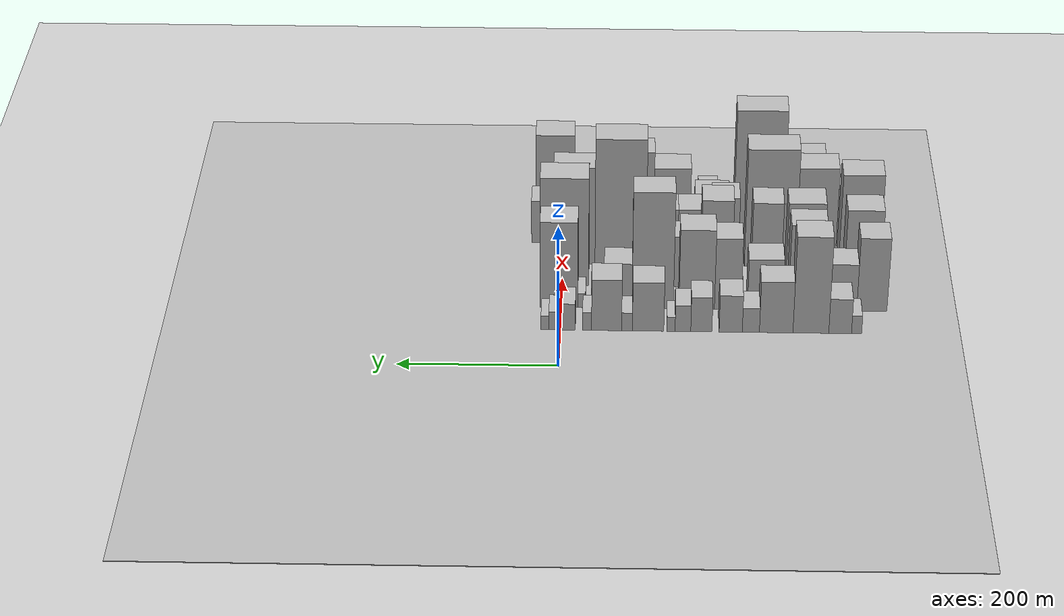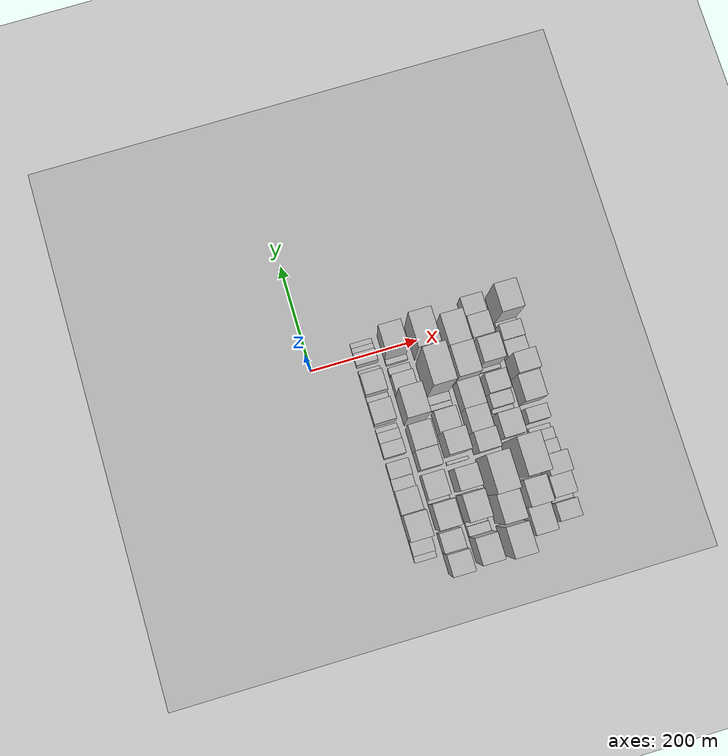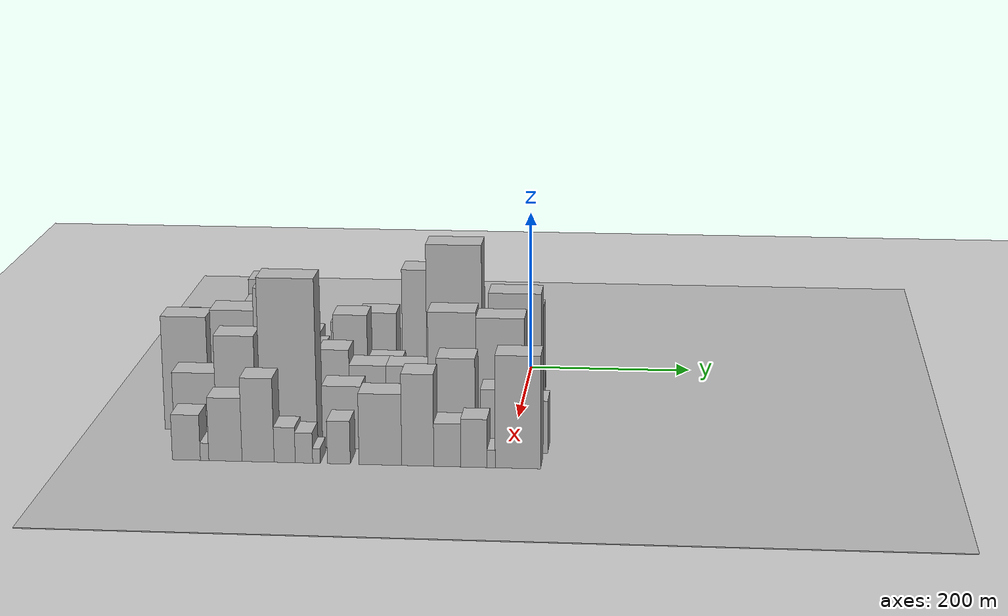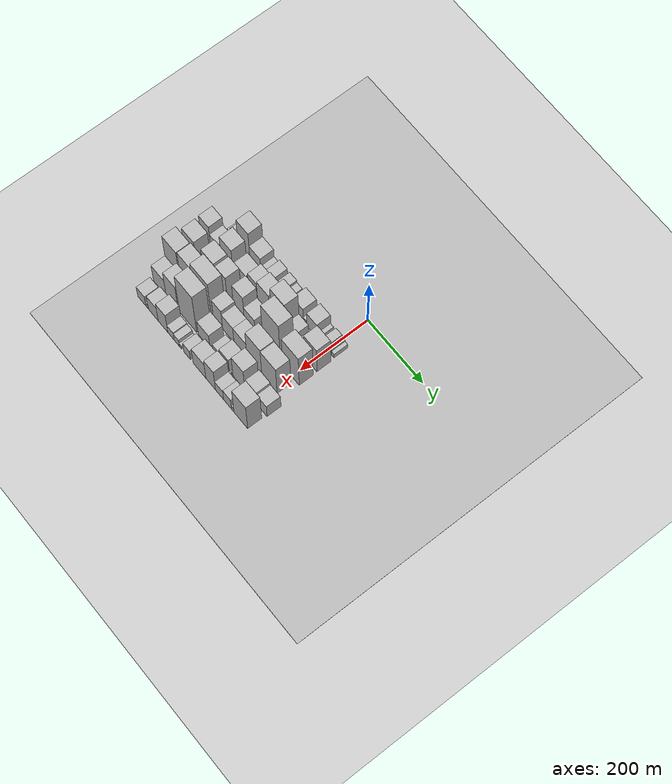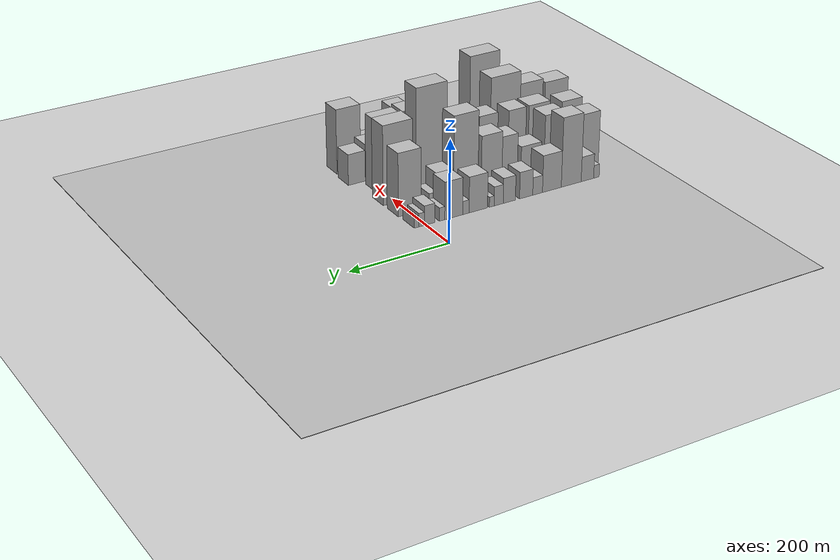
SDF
<sdf version="1.6">
 <world name="default">
  <include><name>ground_plane_1</name><uri>model://HANNAS_ground_plane</uri></include>
  <include>
   <name>ground_plane_2</name>
   <uri>model://HANNAS_ground_plane</uri>
   <pose>100 0 0  0 0 0</pose>
  </include>
  <model name="building_13">
   <static>1</static>
   <pose>100.0000 -370.3168 0 0.000000 0.000000 0.000000</pose>
   <link name="link">
    <pose>0 0 13.50 0 0 0</pose>
    <collision name="collision"><geometry><box><size>40.0000 12.6946 27.0000</size></box></geometry></collision>
    <visual name="visual">
     <cast_shadows>0</cast_shadows>
     <geometry><box><size>40.0000 12.6946 27.0000</size></box></geometry>
     <material>
      <script>
       <uri>model://HANNAS_wall/materials/scripts</uri>
       <uri>model://HANNAS_wall/materials/textures</uri>
       <name>vrc/HANNAS_wall</name>
      </script>
     </material>
    </visual>
   </link>
  </model>
  <model name="building_14">
   <static>1</static>
   <pose>100.0000 -349.7692 0 0.000000 0.000000 0.000000</pose>
   <link name="link">
    <pose>0 0 25.50 0 0 0</pose>
    <collision name="collision"><geometry><box><size>40.0000 28.4006 51.0000</size></box></geometry></collision>
    <visual name="visual">
     <cast_shadows>0</cast_shadows>
     <geometry><box><size>40.0000 28.4006 51.0000</size></box></geometry>
     <material>
      <script>
       <uri>model://HANNAS_wall/materials/scripts</uri>
       <uri>model://HANNAS_wall/materials/textures</uri>
       <name>vrc/HANNAS_wall</name>
      </script>
     </material>
    </visual>
   </link>
  </model>
  <model name="building_15">
   <static>1</static>
   <pose>100.0000 -313.1992 0 0.000000 0.000000 0.000000</pose>
   <link name="link">
    <pose>0 0 70.50 0 0 0</pose>
    <collision name="collision"><geometry><box><size>40.0000 44.7393 141.0000</size></box></geometry></collision>
    <visual name="visual">
     <cast_shadows>0</cast_shadows>
     <geometry><box><size>40.0000 44.7393 141.0000</size></box></geometry>
     <material>
      <script>
       <uri>model://HANNAS_wall/materials/scripts</uri>
       <uri>model://HANNAS_wall/materials/textures</uri>
       <name>vrc/HANNAS_wall</name>
      </script>
     </material>
    </visual>
   </link>
  </model>
  <model name="building_16">
   <static>1</static>
   <pose>100.0000 -269.9063 0 0.000000 0.000000 0.000000</pose>
   <link name="link">
    <pose>0 0 37.50 0 0 0</pose>
    <collision name="collision"><geometry><box><size>40.0000 41.8466 75.0000</size></box></geometry></collision>
    <visual name="visual">
     <cast_shadows>0</cast_shadows>
     <geometry><box><size>40.0000 41.8466 75.0000</size></box></geometry>
     <material>
      <script>
       <uri>model://HANNAS_wall/materials/scripts</uri>
       <uri>model://HANNAS_wall/materials/textures</uri>
       <name>vrc/HANNAS_wall</name>
      </script>
     </material>
    </visual>
   </link>
  </model>
  <model name="building_17">
   <static>1</static>
   <pose>100.0000 -238.2697 0 0.000000 0.000000 0.000000</pose>
   <link name="link">
    <pose>0 0 18.00 0 0 0</pose>
    <collision name="collision"><geometry><box><size>40.0000 21.4265 36.0000</size></box></geometry></collision>
    <visual name="visual">
     <cast_shadows>0</cast_shadows>
     <geometry><box><size>40.0000 21.4265 36.0000</size></box></geometry>
     <material>
      <script>
       <uri>model://HANNAS_wall/materials/scripts</uri>
       <uri>model://HANNAS_wall/materials/textures</uri>
       <name>vrc/HANNAS_wall</name>
      </script>
     </material>
    </visual>
   </link>
  </model>
  <model name="building_18">
   <static>1</static>
   <pose>100.0000 -213.0907 0 0.000000 0.000000 0.000000</pose>
   <link name="link">
    <pose>0 0 27.00 0 0 0</pose>
    <collision name="collision"><geometry><box><size>40.0000 28.9316 54.0000</size></box></geometry></collision>
    <visual name="visual">
     <cast_shadows>0</cast_shadows>
     <geometry><box><size>40.0000 28.9316 54.0000</size></box></geometry>
     <material>
      <script>
       <uri>model://HANNAS_wall/materials/scripts</uri>
       <uri>model://HANNAS_wall/materials/textures</uri>
       <name>vrc/HANNAS_wall</name>
      </script>
     </material>
    </visual>
   </link>
  </model>
  <model name="building_19">
   <static>1</static>
   <pose>100.0000 -176.3862 0 0.000000 0.000000 0.000000</pose>
   <link name="link">
    <pose>0 0 25.50 0 0 0</pose>
    <collision name="collision"><geometry><box><size>40.0000 26.4775 51.0000</size></box></geometry></collision>
    <visual name="visual">
     <cast_shadows>0</cast_shadows>
     <geometry><box><size>40.0000 26.4775 51.0000</size></box></geometry>
     <material>
      <script>
       <uri>model://HANNAS_wall/materials/scripts</uri>
       <uri>model://HANNAS_wall/materials/textures</uri>
       <name>vrc/HANNAS_wall</name>
      </script>
     </material>
    </visual>
   </link>
  </model>
  <model name="building_20">
   <static>1</static>
   <pose>100.0000 -153.3326 0 0.000000 0.000000 0.000000</pose>
   <link name="link">
    <pose>0 0 19.50 0 0 0</pose>
    <collision name="collision"><geometry><box><size>40.0000 19.6296 39.0000</size></box></geometry></collision>
    <visual name="visual">
     <cast_shadows>0</cast_shadows>
     <geometry><box><size>40.0000 19.6296 39.0000</size></box></geometry>
     <material>
      <script>
       <uri>model://HANNAS_wall/materials/scripts</uri>
       <uri>model://HANNAS_wall/materials/textures</uri>
       <name>vrc/HANNAS_wall</name>
      </script>
     </material>
    </visual>
   </link>
  </model>
  <model name="building_21">
   <static>1</static>
   <pose>100.0000 -138.4469 0 0.000000 0.000000 0.000000</pose>
   <link name="link">
    <pose>0 0 10.50 0 0 0</pose>
    <collision name="collision"><geometry><box><size>40.0000 10.1417 21.0000</size></box></geometry></collision>
    <visual name="visual">
     <cast_shadows>0</cast_shadows>
     <geometry><box><size>40.0000 10.1417 21.0000</size></box></geometry>
     <material>
      <script>
       <uri>model://HANNAS_wall/materials/scripts</uri>
       <uri>model://HANNAS_wall/materials/textures</uri>
       <name>vrc/HANNAS_wall</name>
      </script>
     </material>
    </visual>
   </link>
  </model>
  <model name="building_22">
   <static>1</static>
   <pose>100.0000 -109.7502 0 0.000000 0.000000 0.000000</pose>
   <link name="link">
    <pose>0 0 36.00 0 0 0</pose>
    <collision name="collision"><geometry><box><size>40.0000 39.2516 72.0000</size></box></geometry></collision>
    <visual name="visual">
     <cast_shadows>0</cast_shadows>
     <geometry><box><size>40.0000 39.2516 72.0000</size></box></geometry>
     <material>
      <script>
       <uri>model://HANNAS_wall/materials/scripts</uri>
       <uri>model://HANNAS_wall/materials/textures</uri>
       <name>vrc/HANNAS_wall</name>
      </script>
     </material>
    </visual>
   </link>
  </model>
  <model name="building_23">
   <static>1</static>
   <pose>100.0000 -83.3877 0 0.000000 0.000000 0.000000</pose>
   <link name="link">
    <pose>0 0 13.50 0 0 0</pose>
    <collision name="collision"><geometry><box><size>40.0000 13.4734 27.0000</size></box></geometry></collision>
    <visual name="visual">
     <cast_shadows>0</cast_shadows>
     <geometry><box><size>40.0000 13.4734 27.0000</size></box></geometry>
     <material>
      <script>
       <uri>model://HANNAS_wall/materials/scripts</uri>
       <uri>model://HANNAS_wall/materials/textures</uri>
       <name>vrc/HANNAS_wall</name>
      </script>
     </material>
    </visual>
   </link>
  </model>
  <model name="building_24">
   <static>1</static>
   <pose>100.0000 -57.8024 0 0.000000 0.000000 0.000000</pose>
   <link name="link">
    <pose>0 0 37.50 0 0 0</pose>
    <collision name="collision"><geometry><box><size>40.0000 37.6972 75.0000</size></box></geometry></collision>
    <visual name="visual">
     <cast_shadows>0</cast_shadows>
     <geometry><box><size>40.0000 37.6972 75.0000</size></box></geometry>
     <material>
      <script>
       <uri>model://HANNAS_wall/materials/scripts</uri>
       <uri>model://HANNAS_wall/materials/textures</uri>
       <name>vrc/HANNAS_wall</name>
      </script>
     </material>
    </visual>
   </link>
  </model>
  <model name="building_25">
   <static>1</static>
   <pose>100.0000 -33.2798 0 0.000000 0.000000 0.000000</pose>
   <link name="link">
    <pose>0 0 13.50 0 0 0</pose>
    <collision name="collision"><geometry><box><size>40.0000 11.3481 27.0000</size></box></geometry></collision>
    <visual name="visual">
     <cast_shadows>0</cast_shadows>
     <geometry><box><size>40.0000 11.3481 27.0000</size></box></geometry>
     <material>
      <script>
       <uri>model://HANNAS_wall/materials/scripts</uri>
       <uri>model://HANNAS_wall/materials/textures</uri>
       <name>vrc/HANNAS_wall</name>
      </script>
     </material>
    </visual>
   </link>
  </model>
  <model name="building_26">
   <static>1</static>
   <pose>100.0000 -7.4630 0 0.000000 0.000000 0.000000</pose>
   <link name="link">
    <pose>0 0 19.50 0 0 0</pose>
    <collision name="collision"><geometry><box><size>40.0000 22.2854 39.0000</size></box></geometry></collision>
    <visual name="visual">
     <cast_shadows>0</cast_shadows>
     <geometry><box><size>40.0000 22.2854 39.0000</size></box></geometry>
     <material>
      <script>
       <uri>model://HANNAS_wall/materials/scripts</uri>
       <uri>model://HANNAS_wall/materials/textures</uri>
       <name>vrc/HANNAS_wall</name>
      </script>
     </material>
    </visual>
   </link>
  </model>
  <model name="building_27">
   <static>1</static>
   <pose>100.0000 9.1200 0 0.000000 0.000000 0.000000</pose>
   <link name="link">
    <pose>0 0 13.50 0 0 0</pose>
    <collision name="collision"><geometry><box><size>40.0000 10.8806 27.0000</size></box></geometry></collision>
    <visual name="visual">
     <cast_shadows>0</cast_shadows>
     <geometry><box><size>40.0000 10.8806 27.0000</size></box></geometry>
     <material>
      <script>
       <uri>model://HANNAS_wall/materials/scripts</uri>
       <uri>model://HANNAS_wall/materials/textures</uri>
       <name>vrc/HANNAS_wall</name>
      </script>
     </material>
    </visual>
   </link>
  </model>
  <model name="building_28">
   <static>1</static>
   <pose>100.0000 19.4953 0 0.000000 0.000000 0.000000</pose>
   <link name="link">
    <pose>0 0 10.50 0 0 0</pose>
    <collision name="collision"><geometry><box><size>40.0000 9.8701 21.0000</size></box></geometry></collision>
    <visual name="visual">
     <cast_shadows>0</cast_shadows>
     <geometry><box><size>40.0000 9.8701 21.0000</size></box></geometry>
     <material>
      <script>
       <uri>model://HANNAS_wall/materials/scripts</uri>
       <uri>model://HANNAS_wall/materials/textures</uri>
       <name>vrc/HANNAS_wall</name>
      </script>
     </material>
    </visual>
   </link>
  </model>
  <model name="building_65">
   <static>1</static>
   <pose>152.0000 -392.7315 0 0.000000 0.000000 0.000000</pose>
   <link name="link">
    <pose>0 0 54.00 0 0 0</pose>
    <collision name="collision"><geometry><box><size>40.0000 38.1709 108.0000</size></box></geometry></collision>
    <visual name="visual">
     <cast_shadows>0</cast_shadows>
     <geometry><box><size>40.0000 38.1709 108.0000</size></box></geometry>
     <material>
      <script>
       <uri>model://HANNAS_wall/materials/scripts</uri>
       <uri>model://HANNAS_wall/materials/textures</uri>
       <name>vrc/HANNAS_wall</name>
      </script>
     </material>
    </visual>
   </link>
  </model>
  <model name="building_66">
   <static>1</static>
   <pose>152.0000 -355.9440 0 0.000000 0.000000 0.000000</pose>
   <link name="link">
    <pose>0 0 34.50 0 0 0</pose>
    <collision name="collision"><geometry><box><size>40.0000 35.4041 69.0000</size></box></geometry></collision>
    <visual name="visual">
     <cast_shadows>0</cast_shadows>
     <geometry><box><size>40.0000 35.4041 69.0000</size></box></geometry>
     <material>
      <script>
       <uri>model://HANNAS_wall/materials/scripts</uri>
       <uri>model://HANNAS_wall/materials/textures</uri>
       <name>vrc/HANNAS_wall</name>
      </script>
     </material>
    </visual>
   </link>
  </model>
  <model name="building_67">
   <static>1</static>
   <pose>152.0000 -309.5828 0 0.000000 0.000000 0.000000</pose>
   <link name="link">
    <pose>0 0 63.00 0 0 0</pose>
    <collision name="collision"><geometry><box><size>40.0000 45.3184 126.0000</size></box></geometry></collision>
    <visual name="visual">
     <cast_shadows>0</cast_shadows>
     <geometry><box><size>40.0000 45.3184 126.0000</size></box></geometry>
     <material>
      <script>
       <uri>model://HANNAS_wall/materials/scripts</uri>
       <uri>model://HANNAS_wall/materials/textures</uri>
       <name>vrc/HANNAS_wall</name>
      </script>
     </material>
    </visual>
   </link>
  </model>
  <model name="building_68">
   <static>1</static>
   <pose>152.0000 -283.4989 0 0.000000 0.000000 0.000000</pose>
   <link name="link">
    <pose>0 0 7.50 0 0 0</pose>
    <collision name="collision"><geometry><box><size>40.0000 6.8493 15.0000</size></box></geometry></collision>
    <visual name="visual">
     <cast_shadows>0</cast_shadows>
     <geometry><box><size>40.0000 6.8493 15.0000</size></box></geometry>
     <material>
      <script>
       <uri>model://HANNAS_wall/materials/scripts</uri>
       <uri>model://HANNAS_wall/materials/textures</uri>
       <name>vrc/HANNAS_wall</name>
      </script>
     </material>
    </visual>
   </link>
  </model>
  <model name="building_69">
   <static>1</static>
   <pose>152.0000 -257.7718 0 0.000000 0.000000 0.000000</pose>
   <link name="link">
    <pose>0 0 37.50 0 0 0</pose>
    <collision name="collision"><geometry><box><size>40.0000 44.6049 75.0000</size></box></geometry></collision>
    <visual name="visual">
     <cast_shadows>0</cast_shadows>
     <geometry><box><size>40.0000 44.6049 75.0000</size></box></geometry>
     <material>
      <script>
       <uri>model://HANNAS_wall/materials/scripts</uri>
       <uri>model://HANNAS_wall/materials/textures</uri>
       <name>vrc/HANNAS_wall</name>
      </script>
     </material>
    </visual>
   </link>
  </model>
  <model name="building_70">
   <static>1</static>
   <pose>152.0000 -210.6001 0 0.000000 0.000000 0.000000</pose>
   <link name="link">
    <pose>0 0 52.50 0 0 0</pose>
    <collision name="collision"><geometry><box><size>40.0000 33.7383 105.0000</size></box></geometry></collision>
    <visual name="visual">
     <cast_shadows>0</cast_shadows>
     <geometry><box><size>40.0000 33.7383 105.0000</size></box></geometry>
     <material>
      <script>
       <uri>model://HANNAS_wall/materials/scripts</uri>
       <uri>model://HANNAS_wall/materials/textures</uri>
       <name>vrc/HANNAS_wall</name>
      </script>
     </material>
    </visual>
   </link>
  </model>
  <model name="building_71">
   <static>1</static>
   <pose>152.0000 -171.2642 0 0.000000 0.000000 0.000000</pose>
   <link name="link">
    <pose>0 0 58.50 0 0 0</pose>
    <collision name="collision"><geometry><box><size>40.0000 44.9336 117.0000</size></box></geometry></collision>
    <visual name="visual">
     <cast_shadows>0</cast_shadows>
     <geometry><box><size>40.0000 44.9336 117.0000</size></box></geometry>
     <material>
      <script>
       <uri>model://HANNAS_wall/materials/scripts</uri>
       <uri>model://HANNAS_wall/materials/textures</uri>
       <name>vrc/HANNAS_wall</name>
      </script>
     </material>
    </visual>
   </link>
  </model>
  <model name="building_72">
   <static>1</static>
   <pose>152.0000 -115.6282 0 0.000000 0.000000 0.000000</pose>
   <link name="link">
    <pose>0 0 85.50 0 0 0</pose>
    <collision name="collision"><geometry><box><size>40.0000 52.3383 171.0000</size></box></geometry></collision>
    <visual name="visual">
     <cast_shadows>0</cast_shadows>
     <geometry><box><size>40.0000 52.3383 171.0000</size></box></geometry>
     <material>
      <script>
       <uri>model://HANNAS_wall/materials/scripts</uri>
       <uri>model://HANNAS_wall/materials/textures</uri>
       <name>vrc/HANNAS_wall</name>
      </script>
     </material>
    </visual>
   </link>
  </model>
  <model name="building_73">
   <static>1</static>
   <pose>152.0000 -71.7036 0 0.000000 0.000000 0.000000</pose>
   <link name="link">
    <pose>0 0 33.00 0 0 0</pose>
    <collision name="collision"><geometry><box><size>40.0000 35.5109 66.0000</size></box></geometry></collision>
    <visual name="visual">
     <cast_shadows>0</cast_shadows>
     <geometry><box><size>40.0000 35.5109 66.0000</size></box></geometry>
     <material>
      <script>
       <uri>model://HANNAS_wall/materials/scripts</uri>
       <uri>model://HANNAS_wall/materials/textures</uri>
       <name>vrc/HANNAS_wall</name>
      </script>
     </material>
    </visual>
   </link>
  </model>
  <model name="building_74">
   <static>1</static>
   <pose>152.0000 -45.7500 0 0.000000 0.000000 0.000000</pose>
   <link name="link">
    <pose>0 0 15.00 0 0 0</pose>
    <collision name="collision"><geometry><box><size>40.0000 16.3961 30.0000</size></box></geometry></collision>
    <visual name="visual">
     <cast_shadows>0</cast_shadows>
     <geometry><box><size>40.0000 16.3961 30.0000</size></box></geometry>
     <material>
      <script>
       <uri>model://HANNAS_wall/materials/scripts</uri>
       <uri>model://HANNAS_wall/materials/textures</uri>
       <name>vrc/HANNAS_wall</name>
      </script>
     </material>
    </visual>
   </link>
  </model>
  <model name="building_75">
   <static>1</static>
   <pose>152.0000 -25.6211 0 0.000000 0.000000 0.000000</pose>
   <link name="link">
    <pose>0 0 10.50 0 0 0</pose>
    <collision name="collision"><geometry><box><size>40.0000 9.8617 21.0000</size></box></geometry></collision>
    <visual name="visual">
     <cast_shadows>0</cast_shadows>
     <geometry><box><size>40.0000 9.8617 21.0000</size></box></geometry>
     <material>
      <script>
       <uri>model://HANNAS_wall/materials/scripts</uri>
       <uri>model://HANNAS_wall/materials/textures</uri>
       <name>vrc/HANNAS_wall</name>
      </script>
     </material>
    </visual>
   </link>
  </model>
  <model name="building_76">
   <static>1</static>
   <pose>152.0000 3.0299 0 0.000000 0.000000 0.000000</pose>
   <link name="link">
    <pose>0 0 63.00 0 0 0</pose>
    <collision name="collision"><geometry><box><size>40.0000 47.4403 126.0000</size></box></geometry></collision>
    <visual name="visual">
     <cast_shadows>0</cast_shadows>
     <geometry><box><size>40.0000 47.4403 126.0000</size></box></geometry>
     <material>
      <script>
       <uri>model://HANNAS_wall/materials/scripts</uri>
       <uri>model://HANNAS_wall/materials/textures</uri>
       <name>vrc/HANNAS_wall</name>
      </script>
     </material>
    </visual>
   </link>
  </model>
  <model name="building_112">
   <static>1</static>
   <pose>204.0000 -383.6074 0 0.000000 0.000000 0.000000</pose>
   <link name="link">
    <pose>0 0 58.50 0 0 0</pose>
    <collision name="collision"><geometry><box><size>40.0000 46.5537 117.0000</size></box></geometry></collision>
    <visual name="visual">
     <cast_shadows>0</cast_shadows>
     <geometry><box><size>40.0000 46.5537 117.0000</size></box></geometry>
     <material>
      <script>
       <uri>model://HANNAS_wall/materials/scripts</uri>
       <uri>model://HANNAS_wall/materials/textures</uri>
       <name>vrc/HANNAS_wall</name>
      </script>
     </material>
    </visual>
   </link>
  </model>
  <model name="building_113">
   <static>1</static>
   <pose>204.0000 -351.3864 0 0.000000 0.000000 0.000000</pose>
   <link name="link">
    <pose>0 0 15.00 0 0 0</pose>
    <collision name="collision"><geometry><box><size>40.0000 17.8884 30.0000</size></box></geometry></collision>
    <visual name="visual">
     <cast_shadows>0</cast_shadows>
     <geometry><box><size>40.0000 17.8884 30.0000</size></box></geometry>
     <material>
      <script>
       <uri>model://HANNAS_wall/materials/scripts</uri>
       <uri>model://HANNAS_wall/materials/textures</uri>
       <name>vrc/HANNAS_wall</name>
      </script>
     </material>
    </visual>
   </link>
  </model>
  <model name="building_114">
   <static>1</static>
   <pose>204.0000 -337.8575 0 0.000000 0.000000 0.000000</pose>
   <link name="link">
    <pose>0 0 10.50 0 0 0</pose>
    <collision name="collision"><geometry><box><size>40.0000 9.1694 21.0000</size></box></geometry></collision>
    <visual name="visual">
     <cast_shadows>0</cast_shadows>
     <geometry><box><size>40.0000 9.1694 21.0000</size></box></geometry>
     <material>
      <script>
       <uri>model://HANNAS_wall/materials/scripts</uri>
       <uri>model://HANNAS_wall/materials/textures</uri>
       <name>vrc/HANNAS_wall</name>
      </script>
     </material>
    </visual>
   </link>
  </model>
  <model name="building_115">
   <static>1</static>
   <pose>204.0000 -309.4667 0 0.000000 0.000000 0.000000</pose>
   <link name="link">
    <pose>0 0 63.00 0 0 0</pose>
    <collision name="collision"><geometry><box><size>40.0000 47.6123 126.0000</size></box></geometry></collision>
    <visual name="visual">
     <cast_shadows>0</cast_shadows>
     <geometry><box><size>40.0000 47.6123 126.0000</size></box></geometry>
     <material>
      <script>
       <uri>model://HANNAS_wall/materials/scripts</uri>
       <uri>model://HANNAS_wall/materials/textures</uri>
       <name>vrc/HANNAS_wall</name>
      </script>
     </material>
    </visual>
   </link>
  </model>
  <model name="building_116">
   <static>1</static>
   <pose>204.0000 -260.3054 0 0.000000 0.000000 0.000000</pose>
   <link name="link">
    <pose>0 0 63.00 0 0 0</pose>
    <collision name="collision"><geometry><box><size>40.0000 38.7102 126.0000</size></box></geometry></collision>
    <visual name="visual">
     <cast_shadows>0</cast_shadows>
     <geometry><box><size>40.0000 38.7102 126.0000</size></box></geometry>
     <material>
      <script>
       <uri>model://HANNAS_wall/materials/scripts</uri>
       <uri>model://HANNAS_wall/materials/textures</uri>
       <name>vrc/HANNAS_wall</name>
      </script>
     </material>
    </visual>
   </link>
  </model>
  <model name="building_117">
   <static>1</static>
   <pose>204.0000 -227.9271 0 0.000000 0.000000 0.000000</pose>
   <link name="link">
    <pose>0 0 7.50 0 0 0</pose>
    <collision name="collision"><geometry><box><size>40.0000 6.0463 15.0000</size></box></geometry></collision>
    <visual name="visual">
     <cast_shadows>0</cast_shadows>
     <geometry><box><size>40.0000 6.0463 15.0000</size></box></geometry>
     <material>
      <script>
       <uri>model://HANNAS_wall/materials/scripts</uri>
       <uri>model://HANNAS_wall/materials/textures</uri>
       <name>vrc/HANNAS_wall</name>
      </script>
     </material>
    </visual>
   </link>
  </model>
  <model name="building_118">
   <static>1</static>
   <pose>204.0000 -196.7830 0 0.000000 0.000000 0.000000</pose>
   <link name="link">
    <pose>0 0 64.50 0 0 0</pose>
    <collision name="collision"><geometry><box><size>40.0000 40.2419 129.0000</size></box></geometry></collision>
    <visual name="visual">
     <cast_shadows>0</cast_shadows>
     <geometry><box><size>40.0000 40.2419 129.0000</size></box></geometry>
     <material>
      <script>
       <uri>model://HANNAS_wall/materials/scripts</uri>
       <uri>model://HANNAS_wall/materials/textures</uri>
       <name>vrc/HANNAS_wall</name>
      </script>
     </material>
    </visual>
   </link>
  </model>
  <model name="building_119">
   <static>1</static>
   <pose>204.0000 -156.4671 0 0.000000 0.000000 0.000000</pose>
   <link name="link">
    <pose>0 0 37.50 0 0 0</pose>
    <collision name="collision"><geometry><box><size>40.0000 40.3898 75.0000</size></box></geometry></collision>
    <visual name="visual">
     <cast_shadows>0</cast_shadows>
     <geometry><box><size>40.0000 40.3898 75.0000</size></box></geometry>
     <material>
      <script>
       <uri>model://HANNAS_wall/materials/scripts</uri>
       <uri>model://HANNAS_wall/materials/textures</uri>
       <name>vrc/HANNAS_wall</name>
      </script>
     </material>
    </visual>
   </link>
  </model>
  <model name="building_120">
   <static>1</static>
   <pose>204.0000 -127.3492 0 0.000000 0.000000 0.000000</pose>
   <link name="link">
    <pose>0 0 12.00 0 0 0</pose>
    <collision name="collision"><geometry><box><size>40.0000 9.8461 24.0000</size></box></geometry></collision>
    <visual name="visual">
     <cast_shadows>0</cast_shadows>
     <geometry><box><size>40.0000 9.8461 24.0000</size></box></geometry>
     <material>
      <script>
       <uri>model://HANNAS_wall/materials/scripts</uri>
       <uri>model://HANNAS_wall/materials/textures</uri>
       <name>vrc/HANNAS_wall</name>
      </script>
     </material>
    </visual>
   </link>
  </model>
  <model name="building_121">
   <static>1</static>
   <pose>204.0000 -114.4963 0 0.000000 0.000000 0.000000</pose>
   <link name="link">
    <pose>0 0 15.00 0 0 0</pose>
    <collision name="collision"><geometry><box><size>40.0000 15.8597 30.0000</size></box></geometry></collision>
    <visual name="visual">
     <cast_shadows>0</cast_shadows>
     <geometry><box><size>40.0000 15.8597 30.0000</size></box></geometry>
     <material>
      <script>
       <uri>model://HANNAS_wall/materials/scripts</uri>
       <uri>model://HANNAS_wall/materials/textures</uri>
       <name>vrc/HANNAS_wall</name>
      </script>
     </material>
    </visual>
   </link>
  </model>
  <model name="building_122">
   <static>1</static>
   <pose>204.0000 -74.1068 0 0.000000 0.000000 0.000000</pose>
   <link name="link">
    <pose>0 0 108.00 0 0 0</pose>
    <collision name="collision"><geometry><box><size>40.0000 64.9193 216.0000</size></box></geometry></collision>
    <visual name="visual">
     <cast_shadows>0</cast_shadows>
     <geometry><box><size>40.0000 64.9193 216.0000</size></box></geometry>
     <material>
      <script>
       <uri>model://HANNAS_wall/materials/scripts</uri>
       <uri>model://HANNAS_wall/materials/textures</uri>
       <name>vrc/HANNAS_wall</name>
      </script>
     </material>
    </visual>
   </link>
  </model>
  <model name="building_123">
   <static>1</static>
   <pose>204.0000 -2.8531 0 0.000000 0.000000 0.000000</pose>
   <link name="link">
    <pose>0 0 79.50 0 0 0</pose>
    <collision name="collision"><geometry><box><size>40.0000 61.5880 159.0000</size></box></geometry></collision>
    <visual name="visual">
     <cast_shadows>0</cast_shadows>
     <geometry><box><size>40.0000 61.5880 159.0000</size></box></geometry>
     <material>
      <script>
       <uri>model://HANNAS_wall/materials/scripts</uri>
       <uri>model://HANNAS_wall/materials/textures</uri>
       <name>vrc/HANNAS_wall</name>
      </script>
     </material>
    </visual>
   </link>
  </model>
  <model name="building_162">
   <static>1</static>
   <pose>256.0000 -383.0794 0 0.000000 0.000000 0.000000</pose>
   <link name="link">
    <pose>0 0 69.00 0 0 0</pose>
    <collision name="collision"><geometry><box><size>40.0000 53.0187 138.0000</size></box></geometry></collision>
    <visual name="visual">
     <cast_shadows>0</cast_shadows>
     <geometry><box><size>40.0000 53.0187 138.0000</size></box></geometry>
     <material>
      <script>
       <uri>model://HANNAS_wall/materials/scripts</uri>
       <uri>model://HANNAS_wall/materials/textures</uri>
       <name>vrc/HANNAS_wall</name>
      </script>
     </material>
    </visual>
   </link>
  </model>
  <model name="building_163">
   <static>1</static>
   <pose>256.0000 -326.2078 0 0.000000 0.000000 0.000000</pose>
   <link name="link">
    <pose>0 0 73.50 0 0 0</pose>
    <collision name="collision"><geometry><box><size>40.0000 50.7244 147.0000</size></box></geometry></collision>
    <visual name="visual">
     <cast_shadows>0</cast_shadows>
     <geometry><box><size>40.0000 50.7244 147.0000</size></box></geometry>
     <material>
      <script>
       <uri>model://HANNAS_wall/materials/scripts</uri>
       <uri>model://HANNAS_wall/materials/textures</uri>
       <name>vrc/HANNAS_wall</name>
      </script>
     </material>
    </visual>
   </link>
  </model>
  <model name="building_164">
   <static>1</static>
   <pose>256.0000 -267.7426 0 0.000000 0.000000 0.000000</pose>
   <link name="link">
    <pose>0 0 87.00 0 0 0</pose>
    <collision name="collision"><geometry><box><size>40.0000 66.2061 174.0000</size></box></geometry></collision>
    <visual name="visual">
     <cast_shadows>0</cast_shadows>
     <geometry><box><size>40.0000 66.2061 174.0000</size></box></geometry>
     <material>
      <script>
       <uri>model://HANNAS_wall/materials/scripts</uri>
       <uri>model://HANNAS_wall/materials/textures</uri>
       <name>vrc/HANNAS_wall</name>
      </script>
     </material>
    </visual>
   </link>
  </model>
  <model name="building_165">
   <static>1</static>
   <pose>256.0000 -208.8466 0 0.000000 0.000000 0.000000</pose>
   <link name="link">
    <pose>0 0 51.00 0 0 0</pose>
    <collision name="collision"><geometry><box><size>40.0000 35.5858 102.0000</size></box></geometry></collision>
    <visual name="visual">
     <cast_shadows>0</cast_shadows>
     <geometry><box><size>40.0000 35.5858 102.0000</size></box></geometry>
     <material>
      <script>
       <uri>model://HANNAS_wall/materials/scripts</uri>
       <uri>model://HANNAS_wall/materials/textures</uri>
       <name>vrc/HANNAS_wall</name>
      </script>
     </material>
    </visual>
   </link>
  </model>
  <model name="building_166">
   <static>1</static>
   <pose>256.0000 -169.5941 0 0.000000 0.000000 0.000000</pose>
   <link name="link">
    <pose>0 0 42.00 0 0 0</pose>
    <collision name="collision"><geometry><box><size>40.0000 42.9193 84.0000</size></box></geometry></collision>
    <visual name="visual">
     <cast_shadows>0</cast_shadows>
     <geometry><box><size>40.0000 42.9193 84.0000</size></box></geometry>
     <material>
      <script>
       <uri>model://HANNAS_wall/materials/scripts</uri>
       <uri>model://HANNAS_wall/materials/textures</uri>
       <name>vrc/HANNAS_wall</name>
      </script>
     </material>
    </visual>
   </link>
  </model>
  <model name="building_167">
   <static>1</static>
   <pose>256.0000 -123.6535 0 0.000000 0.000000 0.000000</pose>
   <link name="link">
    <pose>0 0 42.00 0 0 0</pose>
    <collision name="collision"><geometry><box><size>40.0000 48.9619 84.0000</size></box></geometry></collision>
    <visual name="visual">
     <cast_shadows>0</cast_shadows>
     <geometry><box><size>40.0000 48.9619 84.0000</size></box></geometry>
     <material>
      <script>
       <uri>model://HANNAS_wall/materials/scripts</uri>
       <uri>model://HANNAS_wall/materials/textures</uri>
       <name>vrc/HANNAS_wall</name>
      </script>
     </material>
    </visual>
   </link>
  </model>
  <model name="building_168">
   <static>1</static>
   <pose>256.0000 -71.5274 0 0.000000 0.000000 0.000000</pose>
   <link name="link">
    <pose>0 0 75.00 0 0 0</pose>
    <collision name="collision"><geometry><box><size>40.0000 55.2903 150.0000</size></box></geometry></collision>
    <visual name="visual">
     <cast_shadows>0</cast_shadows>
     <geometry><box><size>40.0000 55.2903 150.0000</size></box></geometry>
     <material>
      <script>
       <uri>model://HANNAS_wall/materials/scripts</uri>
       <uri>model://HANNAS_wall/materials/textures</uri>
       <name>vrc/HANNAS_wall</name>
      </script>
     </material>
    </visual>
   </link>
  </model>
  <model name="building_169">
   <static>1</static>
   <pose>256.0000 -15.7731 0 0.000000 0.000000 0.000000</pose>
   <link name="link">
    <pose>0 0 72.00 0 0 0</pose>
    <collision name="collision"><geometry><box><size>40.0000 56.2184 144.0000</size></box></geometry></collision>
    <visual name="visual">
     <cast_shadows>0</cast_shadows>
     <geometry><box><size>40.0000 56.2184 144.0000</size></box></geometry>
     <material>
      <script>
       <uri>model://HANNAS_wall/materials/scripts</uri>
       <uri>model://HANNAS_wall/materials/textures</uri>
       <name>vrc/HANNAS_wall</name>
      </script>
     </material>
    </visual>
   </link>
  </model>
  <model name="building_205">
   <static>1</static>
   <pose>308.0000 -362.5122 0 0.000000 0.000000 0.000000</pose>
   <link name="link">
    <pose>0 0 43.50 0 0 0</pose>
    <collision name="collision"><geometry><box><size>40.0000 49.5034 87.0000</size></box></geometry></collision>
    <visual name="visual">
     <cast_shadows>0</cast_shadows>
     <geometry><box><size>40.0000 49.5034 87.0000</size></box></geometry>
     <material>
      <script>
       <uri>model://HANNAS_wall/materials/scripts</uri>
       <uri>model://HANNAS_wall/materials/textures</uri>
       <name>vrc/HANNAS_wall</name>
      </script>
     </material>
    </visual>
   </link>
  </model>
  <model name="building_206">
   <static>1</static>
   <pose>308.0000 -314.7017 0 0.000000 0.000000 0.000000</pose>
   <link name="link">
    <pose>0 0 66.00 0 0 0</pose>
    <collision name="collision"><geometry><box><size>40.0000 46.1176 132.0000</size></box></geometry></collision>
    <visual name="visual">
     <cast_shadows>0</cast_shadows>
     <geometry><box><size>40.0000 46.1176 132.0000</size></box></geometry>
     <material>
      <script>
       <uri>model://HANNAS_wall/materials/scripts</uri>
       <uri>model://HANNAS_wall/materials/textures</uri>
       <name>vrc/HANNAS_wall</name>
      </script>
     </material>
    </visual>
   </link>
  </model>
  <model name="building_207">
   <static>1</static>
   <pose>308.0000 -253.9697 0 0.000000 0.000000 0.000000</pose>
   <link name="link">
    <pose>0 0 100.50 0 0 0</pose>
    <collision name="collision"><geometry><box><size>40.0000 65.3462 201.0000</size></box></geometry></collision>
    <visual name="visual">
     <cast_shadows>0</cast_shadows>
     <geometry><box><size>40.0000 65.3462 201.0000</size></box></geometry>
     <material>
      <script>
       <uri>model://HANNAS_wall/materials/scripts</uri>
       <uri>model://HANNAS_wall/materials/textures</uri>
       <name>vrc/HANNAS_wall</name>
      </script>
     </material>
    </visual>
   </link>
  </model>
  <model name="building_208">
   <static>1</static>
   <pose>308.0000 -192.9649 0 0.000000 0.000000 0.000000</pose>
   <link name="link">
    <pose>0 0 37.50 0 0 0</pose>
    <collision name="collision"><geometry><box><size>40.0000 44.6634 75.0000</size></box></geometry></collision>
    <visual name="visual">
     <cast_shadows>0</cast_shadows>
     <geometry><box><size>40.0000 44.6634 75.0000</size></box></geometry>
     <material>
      <script>
       <uri>model://HANNAS_wall/materials/scripts</uri>
       <uri>model://HANNAS_wall/materials/textures</uri>
       <name>vrc/HANNAS_wall</name>
      </script>
     </material>
    </visual>
   </link>
  </model>
  <model name="building_209">
   <static>1</static>
   <pose>308.0000 -163.6439 0 0.000000 0.000000 0.000000</pose>
   <link name="link">
    <pose>0 0 9.00 0 0 0</pose>
    <collision name="collision"><geometry><box><size>40.0000 7.9787 18.0000</size></box></geometry></collision>
    <visual name="visual">
     <cast_shadows>0</cast_shadows>
     <geometry><box><size>40.0000 7.9787 18.0000</size></box></geometry>
     <material>
      <script>
       <uri>model://HANNAS_wall/materials/scripts</uri>
       <uri>model://HANNAS_wall/materials/textures</uri>
       <name>vrc/HANNAS_wall</name>
      </script>
     </material>
    </visual>
   </link>
  </model>
  <model name="building_210">
   <static>1</static>
   <pose>308.0000 -146.7145 0 0.000000 0.000000 0.000000</pose>
   <link name="link">
    <pose>0 0 22.50 0 0 0</pose>
    <collision name="collision"><geometry><box><size>40.0000 25.8801 45.0000</size></box></geometry></collision>
    <visual name="visual">
     <cast_shadows>0</cast_shadows>
     <geometry><box><size>40.0000 25.8801 45.0000</size></box></geometry>
     <material>
      <script>
       <uri>model://HANNAS_wall/materials/scripts</uri>
       <uri>model://HANNAS_wall/materials/textures</uri>
       <name>vrc/HANNAS_wall</name>
      </script>
     </material>
    </visual>
   </link>
  </model>
  <model name="building_211">
   <static>1</static>
   <pose>308.0000 -116.0744 0 0.000000 0.000000 0.000000</pose>
   <link name="link">
    <pose>0 0 33.00 0 0 0</pose>
    <collision name="collision"><geometry><box><size>40.0000 35.4000 66.0000</size></box></geometry></collision>
    <visual name="visual">
     <cast_shadows>0</cast_shadows>
     <geometry><box><size>40.0000 35.4000 66.0000</size></box></geometry>
     <material>
      <script>
       <uri>model://HANNAS_wall/materials/scripts</uri>
       <uri>model://HANNAS_wall/materials/textures</uri>
       <name>vrc/HANNAS_wall</name>
      </script>
     </material>
    </visual>
   </link>
  </model>
  <model name="building_212">
   <static>1</static>
   <pose>308.0000 -87.7212 0 0.000000 0.000000 0.000000</pose>
   <link name="link">
    <pose>0 0 7.50 0 0 0</pose>
    <collision name="collision"><geometry><box><size>40.0000 7.3063 15.0000</size></box></geometry></collision>
    <visual name="visual">
     <cast_shadows>0</cast_shadows>
     <geometry><box><size>40.0000 7.3063 15.0000</size></box></geometry>
     <material>
      <script>
       <uri>model://HANNAS_wall/materials/scripts</uri>
       <uri>model://HANNAS_wall/materials/textures</uri>
       <name>vrc/HANNAS_wall</name>
      </script>
     </material>
    </visual>
   </link>
  </model>
  <model name="building_213">
   <static>1</static>
   <pose>308.0000 -62.0585 0 0.000000 0.000000 0.000000</pose>
   <link name="link">
    <pose>0 0 55.50 0 0 0</pose>
    <collision name="collision"><geometry><box><size>40.0000 44.0192 111.0000</size></box></geometry></collision>
    <visual name="visual">
     <cast_shadows>0</cast_shadows>
     <geometry><box><size>40.0000 44.0192 111.0000</size></box></geometry>
     <material>
      <script>
       <uri>model://HANNAS_wall/materials/scripts</uri>
       <uri>model://HANNAS_wall/materials/textures</uri>
       <name>vrc/HANNAS_wall</name>
      </script>
     </material>
    </visual>
   </link>
  </model>
  <model name="building_214">
   <static>1</static>
   <pose>308.0000 -13.7702 0 0.000000 0.000000 0.000000</pose>
   <link name="link">
    <pose>0 0 37.50 0 0 0</pose>
    <collision name="collision"><geometry><box><size>40.0000 40.5574 75.0000</size></box></geometry></collision>
    <visual name="visual">
     <cast_shadows>0</cast_shadows>
     <geometry><box><size>40.0000 40.5574 75.0000</size></box></geometry>
     <material>
      <script>
       <uri>model://HANNAS_wall/materials/scripts</uri>
       <uri>model://HANNAS_wall/materials/textures</uri>
       <name>vrc/HANNAS_wall</name>
      </script>
     </material>
    </visual>
   </link>
  </model>
  <model name="building_215">
   <static>1</static>
   <pose>308.0000 24.5444 0 0.000000 0.000000 0.000000</pose>
   <link name="link">
    <pose>0 0 31.50 0 0 0</pose>
    <collision name="collision"><geometry><box><size>40.0000 36.0720 63.0000</size></box></geometry></collision>
    <visual name="visual">
     <cast_shadows>0</cast_shadows>
     <geometry><box><size>40.0000 36.0720 63.0000</size></box></geometry>
     <material>
      <script>
       <uri>model://HANNAS_wall/materials/scripts</uri>
       <uri>model://HANNAS_wall/materials/textures</uri>
       <name>vrc/HANNAS_wall</name>
      </script>
     </material>
    </visual>
   </link>
  </model>
  <model name="building_254">
   <static>1</static>
   <pose>360.0000 -362.5121 0 0.000000 0.000000 0.000000</pose>
   <link name="link">
    <pose>0 0 27.00 0 0 0</pose>
    <collision name="collision"><geometry><box><size>40.0000 31.9723 54.0000</size></box></geometry></collision>
    <visual name="visual">
     <cast_shadows>0</cast_shadows>
     <geometry><box><size>40.0000 31.9723 54.0000</size></box></geometry>
     <material>
      <script>
       <uri>model://HANNAS_wall/materials/scripts</uri>
       <uri>model://HANNAS_wall/materials/textures</uri>
       <name>vrc/HANNAS_wall</name>
      </script>
     </material>
    </visual>
   </link>
  </model>
  <model name="building_255">
   <static>1</static>
   <pose>360.0000 -341.6951 0 0.000000 0.000000 0.000000</pose>
   <link name="link">
    <pose>0 0 10.50 0 0 0</pose>
    <collision name="collision"><geometry><box><size>40.0000 9.6616 21.0000</size></box></geometry></collision>
    <visual name="visual">
     <cast_shadows>0</cast_shadows>
     <geometry><box><size>40.0000 9.6616 21.0000</size></box></geometry>
     <material>
      <script>
       <uri>model://HANNAS_wall/materials/scripts</uri>
       <uri>model://HANNAS_wall/materials/textures</uri>
       <name>vrc/HANNAS_wall</name>
      </script>
     </material>
    </visual>
   </link>
  </model>
  <model name="building_256">
   <static>1</static>
   <pose>360.0000 -317.9074 0 0.000000 0.000000 0.000000</pose>
   <link name="link">
    <pose>0 0 37.50 0 0 0</pose>
    <collision name="collision"><geometry><box><size>40.0000 37.9139 75.0000</size></box></geometry></collision>
    <visual name="visual">
     <cast_shadows>0</cast_shadows>
     <geometry><box><size>40.0000 37.9139 75.0000</size></box></geometry>
     <material>
      <script>
       <uri>model://HANNAS_wall/materials/scripts</uri>
       <uri>model://HANNAS_wall/materials/textures</uri>
       <name>vrc/HANNAS_wall</name>
      </script>
     </material>
    </visual>
   </link>
  </model>
  <model name="building_257">
   <static>1</static>
   <pose>360.0000 -280.6737 0 0.000000 0.000000 0.000000</pose>
   <link name="link">
    <pose>0 0 49.50 0 0 0</pose>
    <collision name="collision"><geometry><box><size>40.0000 36.5536 99.0000</size></box></geometry></collision>
    <visual name="visual">
     <cast_shadows>0</cast_shadows>
     <geometry><box><size>40.0000 36.5536 99.0000</size></box></geometry>
     <material>
      <script>
       <uri>model://HANNAS_wall/materials/scripts</uri>
       <uri>model://HANNAS_wall/materials/textures</uri>
       <name>vrc/HANNAS_wall</name>
      </script>
     </material>
    </visual>
   </link>
  </model>
  <model name="building_258">
   <static>1</static>
   <pose>360.0000 -250.4385 0 0.000000 0.000000 0.000000</pose>
   <link name="link">
    <pose>0 0 21.00 0 0 0</pose>
    <collision name="collision"><geometry><box><size>40.0000 23.9167 42.0000</size></box></geometry></collision>
    <visual name="visual">
     <cast_shadows>0</cast_shadows>
     <geometry><box><size>40.0000 23.9167 42.0000</size></box></geometry>
     <material>
      <script>
       <uri>model://HANNAS_wall/materials/scripts</uri>
       <uri>model://HANNAS_wall/materials/textures</uri>
       <name>vrc/HANNAS_wall</name>
      </script>
     </material>
    </visual>
   </link>
  </model>
  <model name="building_259">
   <static>1</static>
   <pose>360.0000 -228.6071 0 0.000000 0.000000 0.000000</pose>
   <link name="link">
    <pose>0 0 18.00 0 0 0</pose>
    <collision name="collision"><geometry><box><size>40.0000 19.7460 36.0000</size></box></geometry></collision>
    <visual name="visual">
     <cast_shadows>0</cast_shadows>
     <geometry><box><size>40.0000 19.7460 36.0000</size></box></geometry>
     <material>
      <script>
       <uri>model://HANNAS_wall/materials/scripts</uri>
       <uri>model://HANNAS_wall/materials/textures</uri>
       <name>vrc/HANNAS_wall</name>
      </script>
     </material>
    </visual>
   </link>
  </model>
  <model name="building_260">
   <static>1</static>
   <pose>360.0000 -214.3837 0 0.000000 0.000000 0.000000</pose>
   <link name="link">
    <pose>0 0 9.00 0 0 0</pose>
    <collision name="collision"><geometry><box><size>40.0000 8.7007 18.0000</size></box></geometry></collision>
    <visual name="visual">
     <cast_shadows>0</cast_shadows>
     <geometry><box><size>40.0000 8.7007 18.0000</size></box></geometry>
     <material>
      <script>
       <uri>model://HANNAS_wall/materials/scripts</uri>
       <uri>model://HANNAS_wall/materials/textures</uri>
       <name>vrc/HANNAS_wall</name>
      </script>
     </material>
    </visual>
   </link>
  </model>
  <model name="building_261">
   <static>1</static>
   <pose>360.0000 -189.0873 0 0.000000 0.000000 0.000000</pose>
   <link name="link">
    <pose>0 0 25.50 0 0 0</pose>
    <collision name="collision"><geometry><box><size>40.0000 25.8922 51.0000</size></box></geometry></collision>
    <visual name="visual">
     <cast_shadows>0</cast_shadows>
     <geometry><box><size>40.0000 25.8922 51.0000</size></box></geometry>
     <material>
      <script>
       <uri>model://HANNAS_wall/materials/scripts</uri>
       <uri>model://HANNAS_wall/materials/textures</uri>
       <name>vrc/HANNAS_wall</name>
      </script>
     </material>
    </visual>
   </link>
  </model>
  <model name="building_262">
   <static>1</static>
   <pose>360.0000 -141.9976 0 0.000000 0.000000 0.000000</pose>
   <link name="link">
    <pose>0 0 42.00 0 0 0</pose>
    <collision name="collision"><geometry><box><size>40.0000 48.2872 84.0000</size></box></geometry></collision>
    <visual name="visual">
     <cast_shadows>0</cast_shadows>
     <geometry><box><size>40.0000 48.2872 84.0000</size></box></geometry>
     <material>
      <script>
       <uri>model://HANNAS_wall/materials/scripts</uri>
       <uri>model://HANNAS_wall/materials/textures</uri>
       <name>vrc/HANNAS_wall</name>
      </script>
     </material>
    </visual>
   </link>
  </model>
  <model name="building_263">
   <static>1</static>
   <pose>360.0000 -99.8212 0 0.000000 0.000000 0.000000</pose>
   <link name="link">
    <pose>0 0 54.00 0 0 0</pose>
    <collision name="collision"><geometry><box><size>40.0000 36.0656 108.0000</size></box></geometry></collision>
    <visual name="visual">
     <cast_shadows>0</cast_shadows>
     <geometry><box><size>40.0000 36.0656 108.0000</size></box></geometry>
     <material>
      <script>
       <uri>model://HANNAS_wall/materials/scripts</uri>
       <uri>model://HANNAS_wall/materials/textures</uri>
       <name>vrc/HANNAS_wall</name>
      </script>
     </material>
    </visual>
   </link>
  </model>
  <model name="building_264">
   <static>1</static>
   <pose>360.0000 -66.5907 0 0.000000 0.000000 0.000000</pose>
   <link name="link">
    <pose>0 0 25.50 0 0 0</pose>
    <collision name="collision"><geometry><box><size>40.0000 30.3954 51.0000</size></box></geometry></collision>
    <visual name="visual">
     <cast_shadows>0</cast_shadows>
     <geometry><box><size>40.0000 30.3954 51.0000</size></box></geometry>
     <material>
      <script>
       <uri>model://HANNAS_wall/materials/scripts</uri>
       <uri>model://HANNAS_wall/materials/textures</uri>
       <name>vrc/HANNAS_wall</name>
      </script>
     </material>
    </visual>
   </link>
  </model>
  <model name="building_265">
   <static>1</static>
   <pose>360.0000 -36.6346 0 0.000000 0.000000 0.000000</pose>
   <link name="link">
    <pose>0 0 28.50 0 0 0</pose>
    <collision name="collision"><geometry><box><size>40.0000 29.5168 57.0000</size></box></geometry></collision>
    <visual name="visual">
     <cast_shadows>0</cast_shadows>
     <geometry><box><size>40.0000 29.5168 57.0000</size></box></geometry>
     <material>
      <script>
       <uri>model://HANNAS_wall/materials/scripts</uri>
       <uri>model://HANNAS_wall/materials/textures</uri>
       <name>vrc/HANNAS_wall</name>
      </script>
     </material>
    </visual>
   </link>
  </model>
  <model name="building_266">
   <static>1</static>
   <pose>360.0000 -17.3516 0 0.000000 0.000000 0.000000</pose>
   <link name="link">
    <pose>0 0 10.50 0 0 0</pose>
    <collision name="collision"><geometry><box><size>40.0000 9.0493 21.0000</size></box></geometry></collision>
    <visual name="visual">
     <cast_shadows>0</cast_shadows>
     <geometry><box><size>40.0000 9.0493 21.0000</size></box></geometry>
     <material>
      <script>
       <uri>model://HANNAS_wall/materials/scripts</uri>
       <uri>model://HANNAS_wall/materials/textures</uri>
       <name>vrc/HANNAS_wall</name>
      </script>
     </material>
    </visual>
   </link>
  </model>
  <model name="building_267">
   <static>1</static>
   <pose>360.0000 12.6371 0 0.000000 0.000000 0.000000</pose>
   <link name="link">
    <pose>0 0 66.00 0 0 0</pose>
    <collision name="collision"><geometry><box><size>40.0000 50.9280 132.0000</size></box></geometry></collision>
    <visual name="visual">
     <cast_shadows>0</cast_shadows>
     <geometry><box><size>40.0000 50.9280 132.0000</size></box></geometry>
     <material>
      <script>
       <uri>model://HANNAS_wall/materials/scripts</uri>
       <uri>model://HANNAS_wall/materials/textures</uri>
       <name>vrc/HANNAS_wall</name>
      </script>
     </material>
    </visual>
   </link>
  </model>
 </world>
</sdf>
